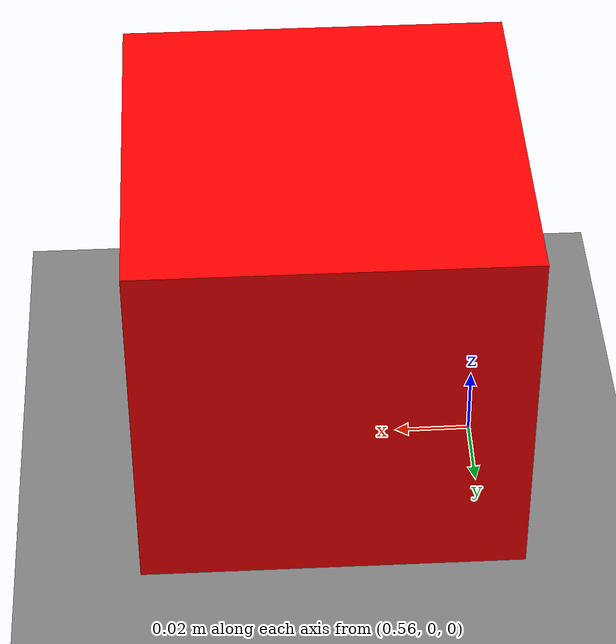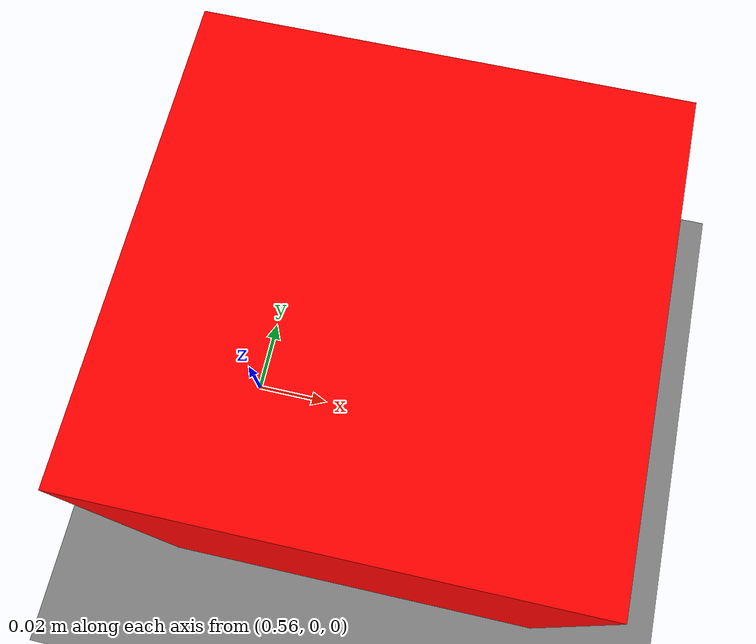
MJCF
<mujoco>
  <option timestep="0.002" />

  <visual>
    <map znear="0.05" zfar="3.0"/>
  </visual>

  <asset>
    <material name="red" rgba="1 0 0 1"/>
  </asset>

  <worldbody>
    <light pos="0 0 3" castshadow="false"/>

    <geom name="floor" type="plane" size="2 2 0.1" contype="1" conaffinity="1"/>

    <body name="target_box" pos="0.6 0 0.05">
      <joint type="free"/> <geom name="box_geom" type="box" size="0.05 0.05 0.05" material="red" contype="1" conaffinity="1" density="100"/>
    </body>

    <camera name="test_cam" pos="0 0 0.1" mode="targetbody" target="target_box" fovy="60"/>
  </worldbody>
</mujoco>
